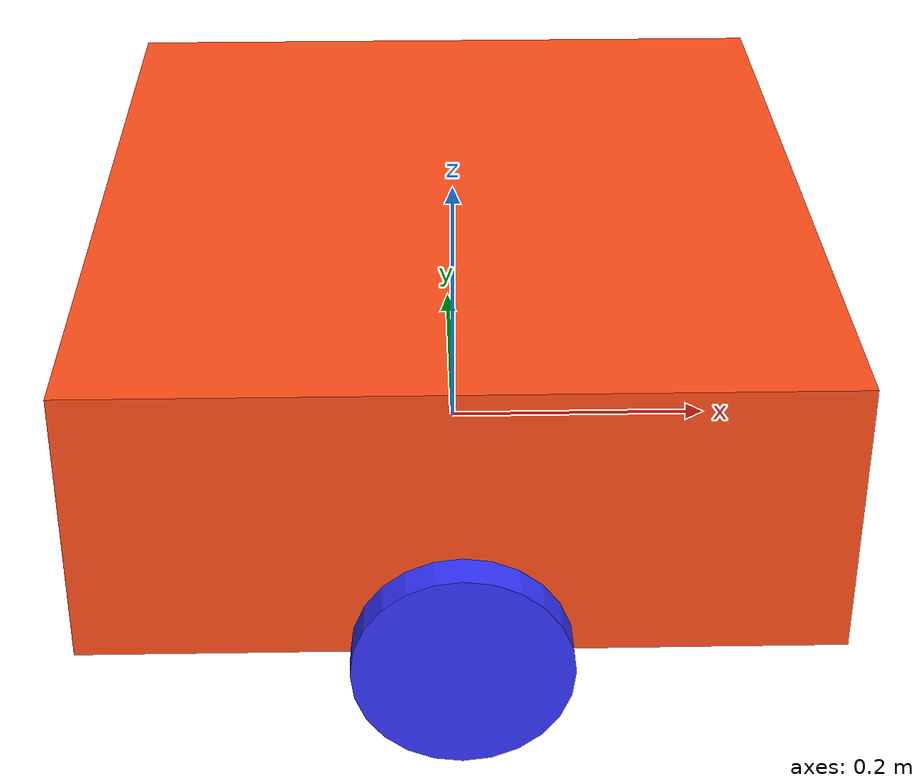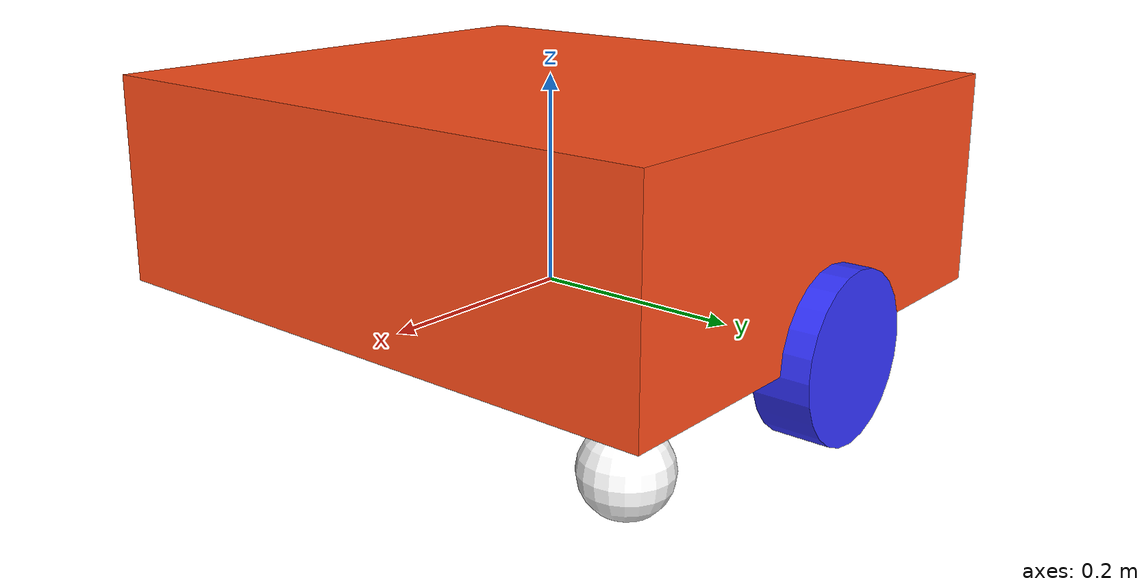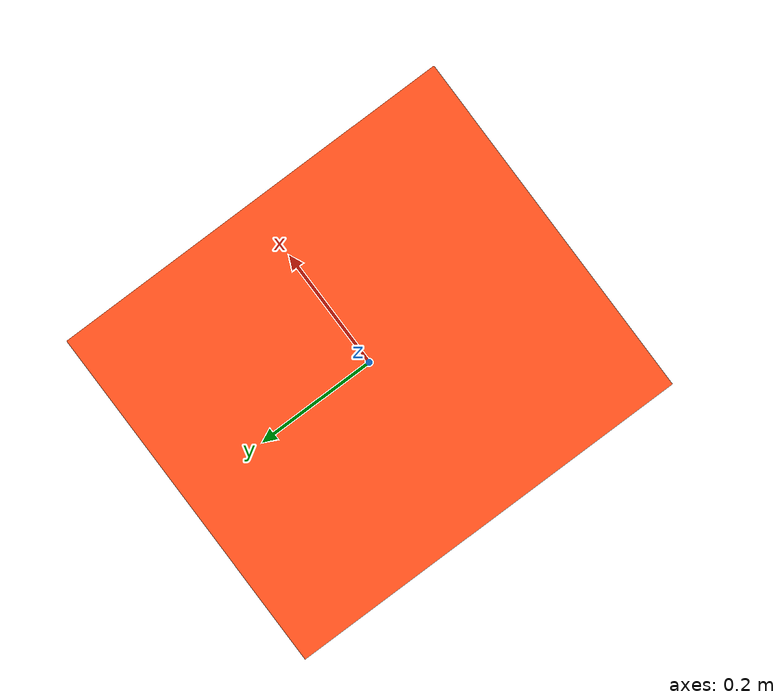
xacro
<?xml version="1.0"?>
<robot xmlns:xacro="http://www.ros.org/wiki/xacro">
<!-- This will contain the core structure defined.  -->

    <xacro:include filename="inertial_macros.xacro"/>
    <xacro:include filename="properties.xacro"/>
    <xacro:include filename="material.xacro"/>

    <link name="base_link"></link>

    <link name="base_footprint"></link>

    <!-- BASE_FOOTPRINT LINK -->
    <joint name="base_footprint_joint" type="fixed">
        <parent link="base_link"/>
        <child link="base_footprint"/>
        <origin xyz="0 0 0"/>
    </joint>

    <!-- CHASSIS LINK -->
    <joint name="chassis_joint" type="fixed">
        <parent link="base_link"/>
        <child link="chassis"/>
        <origin xyz="${-wheel_offset_x} 0 0"/>
    </joint>

    <link name="chassis">
        <visual>
            <origin xyz="${chassis_length/2} 0 ${chassis_height/2}"/>
            <geometry>
                <box size="${chassis_length} ${chassis_width} ${chassis_height}"/>
            </geometry>
            <material name="orange"/>
        </visual>
        <collision>
            <origin xyz="${chassis_length/2} 0 ${chassis_height/2}"/>
            <geometry>
                <box size="${chassis_length} ${chassis_width} ${chassis_height}"/>
            </geometry>
        </collision>
        <xacro:inertial_box mass="0.5" x="${chassis_length}" y="${chassis_width}" z="${chassis_height}">
            <origin xyz="${chassis_length/2} 0 ${chassis_height/2}" rpy="0 0 0"/>
        </xacro:inertial_box>
    </link>

    <gazebo reference="chassis">
        <material>Gazebo/Orange</material>
    </gazebo>

    <!-- LEFT WHEEL LINK -->
    <joint name="left_wheel_joint" type="continuous">
        <parent link="base_link"/>
        <child link="left_wheel"/>
        <origin xyz="0 ${wheel_offset_y} 0" rpy="-${pi/2} 0 0" />
        <axis xyz="0 0 1"/>
    </joint>

    <link name="left_wheel">
        <visual>
            <geometry>
                <cylinder radius="${wheel_radius}" length="${wheel_thickness}"/>
            </geometry>
            <material name="blue"/>
        </visual>
        <collision>
            <geometry>
                <sphere radius="${wheel_radius}"/>
            </geometry>
        </collision>
        <xacro:inertial_cylinder mass="${wheel_mass}" length="${wheel_thickness}" radius="${wheel_radius}">
            <origin xyz="0 0 0" rpy="0 0 0"/>
        </xacro:inertial_cylinder>
    </link>

    <gazebo reference="left_wheel">
        <material>Gazebo/Blue</material>
    </gazebo>

 <!-- RIGHT WHEEL LINK -->
    <joint name="right_wheel_joint" type="continuous">
        <parent link="base_link"/>
        <child link="right_wheel"/>
        <origin xyz="0 ${-wheel_offset_y} 0" rpy="${pi/2} 0 0" />
        <axis xyz="0 0 -1"/>
    </joint>

    <link name="right_wheel">
        <visual>
            <geometry>
                <cylinder radius="${wheel_radius}" length="${wheel_thickness}"/>
            </geometry>
            <material name="blue"/>
        </visual>
        <collision>
            <geometry>
                <sphere radius="${wheel_radius}"/>
            </geometry>
        </collision>
        <xacro:inertial_cylinder mass="${wheel_mass}" length="${wheel_thickness}" radius="${wheel_radius}">
            <origin xyz="0 0 0" rpy="0 0 0"/>
        </xacro:inertial_cylinder>
    </link>

    <gazebo reference="right_wheel">
        <material>Gazebo/Blue</material>
    </gazebo>

<!-- CASTER WHEEL -->
    <joint name="caster_wheel_joint" type="fixed">
        <parent link="base_link"/>
        <child link="caster_wheel"/>
        <origin xyz="${caster_wheel_offset_x} ${caster_wheel_offset_y} -${caster_wheel_offset_z}"/>
    </joint>

    <link name="caster_wheel">
        <visual>
            <geometry>
                <sphere radius="${caster_wheel_radius}"/>
            </geometry>
            <material name="white"/>
        </visual>
        <collision>
            <geometry>
                <sphere radius="${caster_wheel_radius}"/>
            </geometry>
        </collision>
        <xacro:inertial_sphere mass="${caster_wheel_mass}" radius="${caster_wheel_radius}">
            <origin xyz="0 0 0" rpy="0 0 0"/>
        </xacro:inertial_sphere>
    </link>

    <gazebo reference="caster_wheel">
        <material>Gazebo/White</material>
        <!--the lesser the value the lesser the friction-->
        <mu1 value="0.000000000000000001"/>
        <mu2 value="0.000000000000000001"/>
    </gazebo>

</robot>

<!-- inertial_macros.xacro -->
<robot xmlns:xacro="http://www.ros.org/wiki/xacro" >
<!-- These make use of xacro's mathematical functionality -->

    <!-- Specify some standard inertial calculations https://en.wikipedia.org/wiki/List_of_moments_of_inertia -->

    <xacro:macro name="inertial_sphere" params="mass radius *origin">
        <inertial>
            <xacro:insert_block name="origin"/>
            <mass value="${mass}" />
            <inertia ixx="${(2/5) * mass * (radius*radius)}" ixy="0.0" ixz="0.0"
                    iyy="${(2/5) * mass * (radius*radius)}" iyz="0.0"
                    izz="${(2/5) * mass * (radius*radius)}" />
        </inertial>
    </xacro:macro>

    <xacro:macro name="inertial_box" params="mass x y z *origin">
        <inertial>
            <xacro:insert_block name="origin"/>
            <mass value="${mass}" />
            <inertia ixx="${(1/12) * mass * (y*y+z*z)}" ixy="0.0" ixz="0.0"
                    iyy="${(1/12) * mass * (x*x+z*z)}" iyz="0.0"
                    izz="${(1/12) * mass * (x*x+y*y)}" />
        </inertial>
    </xacro:macro>

    <xacro:macro name="inertial_cylinder" params="mass length radius *origin">
        <inertial>
            <xacro:insert_block name="origin"/>
            <mass value="${mass}" />
            <inertia ixx="${(1/12) * mass * (3*radius*radius + length*length)}" ixy="0.0" ixz="0.0"
                    iyy="${(1/12) * mass * (3*radius*radius + length*length)}" iyz="0.0"
                    izz="${(1/2) * mass * (radius*radius)}" />
        </inertial>
    </xacro:macro>

</robot>

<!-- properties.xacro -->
<robot xmlns:xacro="http://www.ros.org/wiki/xacro">
<!-- contains all the properties of the bot, one stop shop to change all dimentions  -->

    <xacro:property name="chassis_length" value="0.520"/>
    <xacro:property name="chassis_width" value="0.600"/>
    <xacro:property name="chassis_height" value="0.200"/>

    <xacro:property name="chassis_mass" value="1.0"/>

    <xacro:property name="wheel_radius" value="0.075"/>
    <xacro:property name="wheel_thickness" value="0.051"/>
    <xacro:property name="wheel_mass" value="0.05"/>

    <xacro:property name="wheel_offset_x" value="0.26"/>
    <xacro:property name="wheel_offset_y" value="0.300"/>
    <xacro:property name="wheel_offset_z" value="0"/>

    <xacro:property name="caster_wheel_radius" value="0.0375"/>
    <xacro:property name="caster_wheel_mass" value="0.01"/>

    <xacro:property name="caster_wheel_offset_x" value="0.22"/>
    <xacro:property name="caster_wheel_offset_y" value="0.26"/>
    <xacro:property name="caster_wheel_offset_z" value="0.0375"/>

</robot>

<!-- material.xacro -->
<robot xmlns:xacro="http://www.ros.org/wiki/xacro">
<!-- contains all the materials used for the bot  -->

    <material name="white">
        <color rgba="1 1 1 1" />
    </material>

    <material name="orange">
        <color rgba="1 0.3 0.1 1"/>
    </material>

    <material name="blue">
        <color rgba="0.2 0.2 1 1"/>
    </material>

    <material name="black">
        <color rgba="0 0 0 1"/>
    </material>

    <material name="red">
        <color rgba="1 0 0 1"/>
    </material>

</robot>
